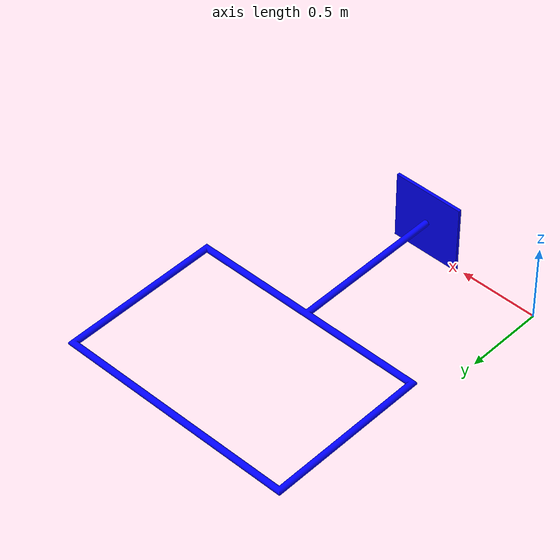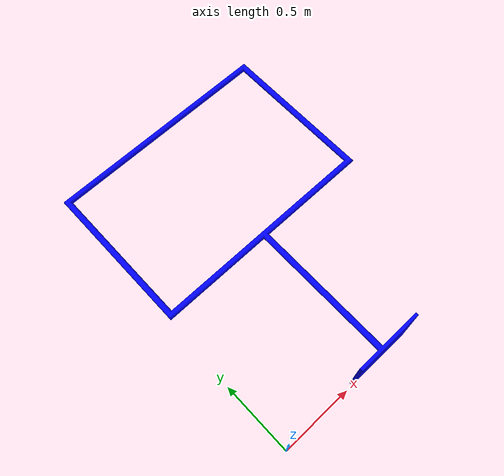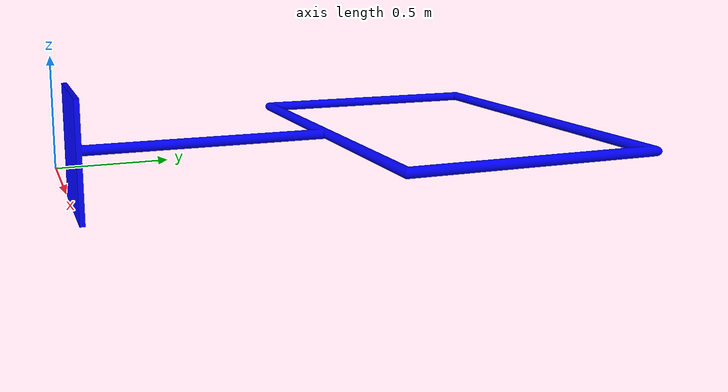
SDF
<?xml version="1.0"?>
<sdf version="1.9">
  <model name="1.5window">
    <static>true</static>
    <link name="link">

      <collision name="collision">
        <geometry>
          <mesh>
            <uri>model://1.5window/meshes/1.5tunnel.dae</uri>
            <scale>0.001 0.001 0.001</scale>
          </mesh>
        </geometry>
      </collision>

      <visual name="visual">
        <geometry>
          <mesh>
            <uri>model://1.5window/meshes/1.5tunnel.dae</uri>
            <scale>0.001 0.001 0.001</scale>
          </mesh>
        </geometry>
        <material>
          <ambient>0 0 1 1</ambient>
          <diffuse>0 0 1 1</diffuse>
          <specular>0.1 0.1 0.1 1</specular>
        </material>
      </visual>
    </link>
  </model>
</sdf>
